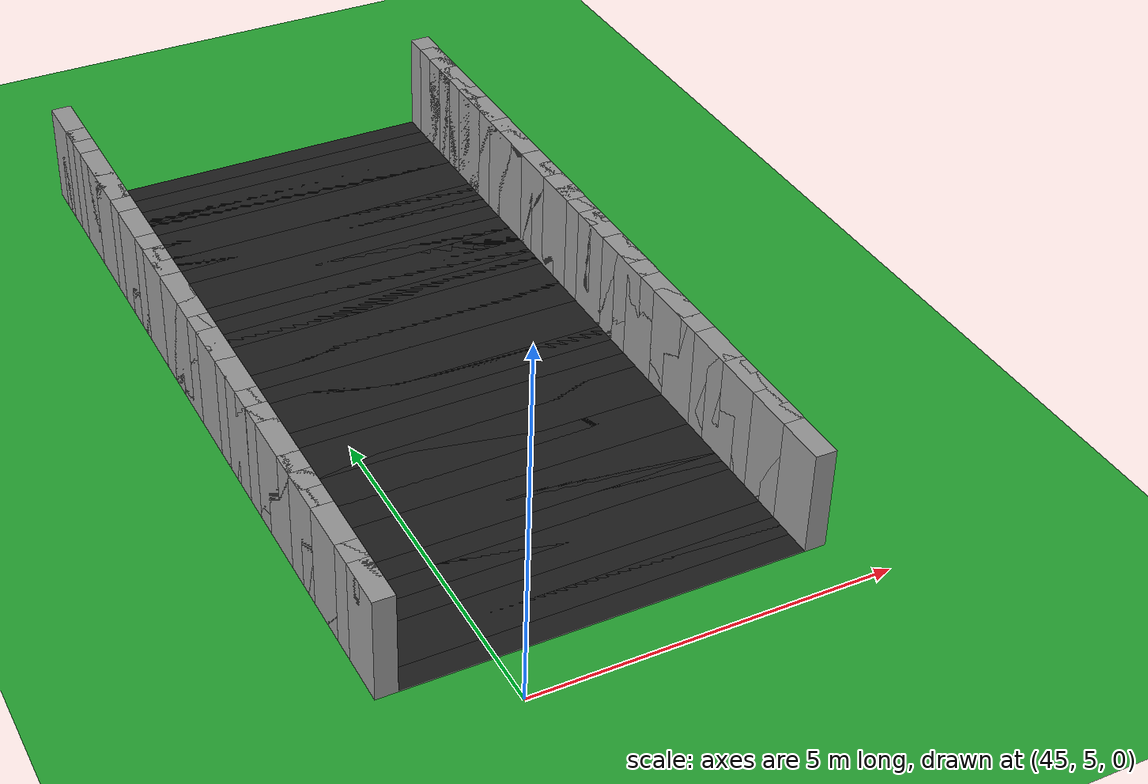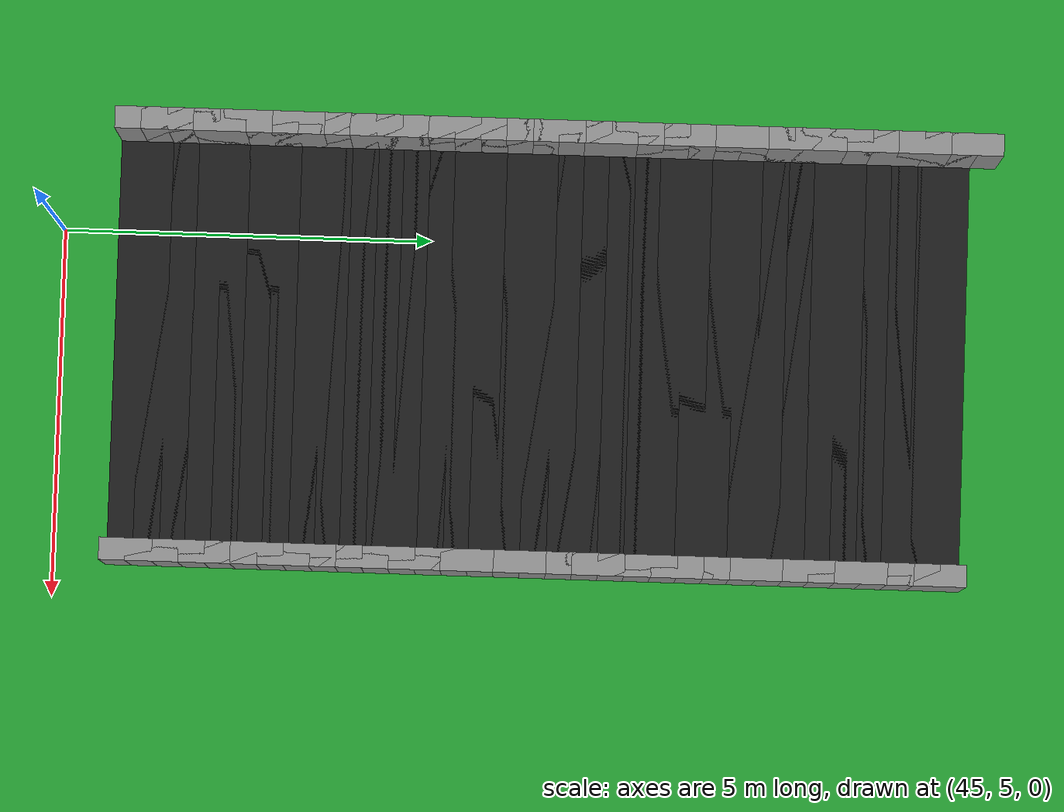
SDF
<sdf version="1.6">
 <world name="loop_speedloop">
  <include><uri>model://sun</uri></include>
  <model name="ground_plane">
   <static>true</static>
   <link name="link">
    <collision name="collision">
     <surface><friction><ode><mu>100</mu><mu2>50</mu2></ode></friction></surface>
     <geometry><plane><normal>0 0 1</normal><size>120 120</size></plane></geometry>
    </collision>
    <visual name="visual">
     <geometry><plane><normal>0 0 1</normal><size>120 120</size></plane></geometry>
     <material>
      <script><uri>file://media/materials/scripts/gazebo.material</uri><name>Gazebo/Green</name></script>
     </material>
    </visual>
   </link>
  </model>
  <model name="asphalt_144">
   <static>true</static>
   <pose>46.501 6.080 0.005 0 0 1.57080</pose>
   <link name="link">
    <visual name="visual">
     <geometry><box><size>0.711 5.500 0.010</size></box></geometry>
     <material>
      <script><uri>file://media/materials/scripts/gazebo.material</uri><name>Gazebo/Black</name></script>
     </material>
    </visual>
   </link>
  </model>
  <model name="curbL_144">
   <static>true</static>
   <pose>43.601 6.080 0.750 0 0 1.57080</pose>
   <link name="link">
    <collision name="collision"><geometry><box><size>0.711 0.300 1.500</size></box></geometry></collision>
    <visual name="visual">
     <geometry><box><size>0.711 0.300 1.500</size></box></geometry>
     <material>
      <script><uri>file://media/materials/scripts/gazebo.material</uri><name>Gazebo/Grey</name></script>
     </material>
    </visual>
   </link>
  </model>
  <model name="curbR_144">
   <static>true</static>
   <pose>49.401 6.080 0.750 0 0 1.57080</pose>
   <link name="link">
    <collision name="collision"><geometry><box><size>0.711 0.300 1.500</size></box></geometry></collision>
    <visual name="visual">
     <geometry><box><size>0.711 0.300 1.500</size></box></geometry>
     <material>
      <script><uri>file://media/materials/scripts/gazebo.material</uri><name>Gazebo/Grey</name></script>
     </material>
    </visual>
   </link>
  </model>
  <model name="asphalt_145">
   <static>true</static>
   <pose>46.501 6.431 0.005 0 0 1.57080</pose>
   <link name="link">
    <visual name="visual">
     <geometry><box><size>0.711 5.500 0.010</size></box></geometry>
     <material>
      <script><uri>file://media/materials/scripts/gazebo.material</uri><name>Gazebo/Black</name></script>
     </material>
    </visual>
   </link>
  </model>
  <model name="curbL_145">
   <static>true</static>
   <pose>43.601 6.431 0.750 0 0 1.57080</pose>
   <link name="link">
    <collision name="collision"><geometry><box><size>0.711 0.300 1.500</size></box></geometry></collision>
    <visual name="visual">
     <geometry><box><size>0.711 0.300 1.500</size></box></geometry>
     <material>
      <script><uri>file://media/materials/scripts/gazebo.material</uri><name>Gazebo/Grey</name></script>
     </material>
    </visual>
   </link>
  </model>
  <model name="curbR_145">
   <static>true</static>
   <pose>49.401 6.431 0.750 0 0 1.57080</pose>
   <link name="link">
    <collision name="collision"><geometry><box><size>0.711 0.300 1.500</size></box></geometry></collision>
    <visual name="visual">
     <geometry><box><size>0.711 0.300 1.500</size></box></geometry>
     <material>
      <script><uri>file://media/materials/scripts/gazebo.material</uri><name>Gazebo/Grey</name></script>
     </material>
    </visual>
   </link>
  </model>
  <model name="asphalt_146">
   <static>true</static>
   <pose>46.501 6.782 0.005 0 0 1.57080</pose>
   <link name="link">
    <visual name="visual">
     <geometry><box><size>0.711 5.500 0.010</size></box></geometry>
     <material>
      <script><uri>file://media/materials/scripts/gazebo.material</uri><name>Gazebo/Black</name></script>
     </material>
    </visual>
   </link>
  </model>
  <model name="curbL_146">
   <static>true</static>
   <pose>43.601 6.782 0.750 0 0 1.57080</pose>
   <link name="link">
    <collision name="collision"><geometry><box><size>0.711 0.300 1.500</size></box></geometry></collision>
    <visual name="visual">
     <geometry><box><size>0.711 0.300 1.500</size></box></geometry>
     <material>
      <script><uri>file://media/materials/scripts/gazebo.material</uri><name>Gazebo/Grey</name></script>
     </material>
    </visual>
   </link>
  </model>
  <model name="curbR_146">
   <static>true</static>
   <pose>49.401 6.782 0.750 0 0 1.57080</pose>
   <link name="link">
    <collision name="collision"><geometry><box><size>0.711 0.300 1.500</size></box></geometry></collision>
    <visual name="visual">
     <geometry><box><size>0.711 0.300 1.500</size></box></geometry>
     <material>
      <script><uri>file://media/materials/scripts/gazebo.material</uri><name>Gazebo/Grey</name></script>
     </material>
    </visual>
   </link>
  </model>
  <model name="asphalt_147">
   <static>true</static>
   <pose>46.501 7.133 0.005 0 0 1.57080</pose>
   <link name="link">
    <visual name="visual">
     <geometry><box><size>0.711 5.500 0.010</size></box></geometry>
     <material>
      <script><uri>file://media/materials/scripts/gazebo.material</uri><name>Gazebo/Black</name></script>
     </material>
    </visual>
   </link>
  </model>
  <model name="curbL_147">
   <static>true</static>
   <pose>43.601 7.133 0.750 0 0 1.57080</pose>
   <link name="link">
    <collision name="collision"><geometry><box><size>0.711 0.300 1.500</size></box></geometry></collision>
    <visual name="visual">
     <geometry><box><size>0.711 0.300 1.500</size></box></geometry>
     <material>
      <script><uri>file://media/materials/scripts/gazebo.material</uri><name>Gazebo/Grey</name></script>
     </material>
    </visual>
   </link>
  </model>
  <model name="curbR_147">
   <static>true</static>
   <pose>49.401 7.133 0.750 0 0 1.57080</pose>
   <link name="link">
    <collision name="collision"><geometry><box><size>0.711 0.300 1.500</size></box></geometry></collision>
    <visual name="visual">
     <geometry><box><size>0.711 0.300 1.500</size></box></geometry>
     <material>
      <script><uri>file://media/materials/scripts/gazebo.material</uri><name>Gazebo/Grey</name></script>
     </material>
    </visual>
   </link>
  </model>
  <model name="asphalt_148">
   <static>true</static>
   <pose>46.501 7.484 0.005 0 0 1.57080</pose>
   <link name="link">
    <visual name="visual">
     <geometry><box><size>0.711 5.500 0.010</size></box></geometry>
     <material>
      <script><uri>file://media/materials/scripts/gazebo.material</uri><name>Gazebo/Black</name></script>
     </material>
    </visual>
   </link>
  </model>
  <model name="curbL_148">
   <static>true</static>
   <pose>43.601 7.484 0.750 0 0 1.57080</pose>
   <link name="link">
    <collision name="collision"><geometry><box><size>0.711 0.300 1.500</size></box></geometry></collision>
    <visual name="visual">
     <geometry><box><size>0.711 0.300 1.500</size></box></geometry>
     <material>
      <script><uri>file://media/materials/scripts/gazebo.material</uri><name>Gazebo/Grey</name></script>
     </material>
    </visual>
   </link>
  </model>
  <model name="curbR_148">
   <static>true</static>
   <pose>49.401 7.484 0.750 0 0 1.57080</pose>
   <link name="link">
    <collision name="collision"><geometry><box><size>0.711 0.300 1.500</size></box></geometry></collision>
    <visual name="visual">
     <geometry><box><size>0.711 0.300 1.500</size></box></geometry>
     <material>
      <script><uri>file://media/materials/scripts/gazebo.material</uri><name>Gazebo/Grey</name></script>
     </material>
    </visual>
   </link>
  </model>
  <model name="asphalt_149">
   <static>true</static>
   <pose>46.501 7.834 0.005 0 0 1.57080</pose>
   <link name="link">
    <visual name="visual">
     <geometry><box><size>0.711 5.500 0.010</size></box></geometry>
     <material>
      <script><uri>file://media/materials/scripts/gazebo.material</uri><name>Gazebo/Black</name></script>
     </material>
    </visual>
   </link>
  </model>
  <model name="curbL_149">
   <static>true</static>
   <pose>43.601 7.834 0.750 0 0 1.57080</pose>
   <link name="link">
    <collision name="collision"><geometry><box><size>0.711 0.300 1.500</size></box></geometry></collision>
    <visual name="visual">
     <geometry><box><size>0.711 0.300 1.500</size></box></geometry>
     <material>
      <script><uri>file://media/materials/scripts/gazebo.material</uri><name>Gazebo/Grey</name></script>
     </material>
    </visual>
   </link>
  </model>
  <model name="curbR_149">
   <static>true</static>
   <pose>49.401 7.834 0.750 0 0 1.57080</pose>
   <link name="link">
    <collision name="collision"><geometry><box><size>0.711 0.300 1.500</size></box></geometry></collision>
    <visual name="visual">
     <geometry><box><size>0.711 0.300 1.500</size></box></geometry>
     <material>
      <script><uri>file://media/materials/scripts/gazebo.material</uri><name>Gazebo/Grey</name></script>
     </material>
    </visual>
   </link>
  </model>
  <model name="asphalt_150">
   <static>true</static>
   <pose>46.501 8.185 0.005 0 0 1.57080</pose>
   <link name="link">
    <visual name="visual">
     <geometry><box><size>0.711 5.500 0.010</size></box></geometry>
     <material>
      <script><uri>file://media/materials/scripts/gazebo.material</uri><name>Gazebo/Black</name></script>
     </material>
    </visual>
   </link>
  </model>
  <model name="curbL_150">
   <static>true</static>
   <pose>43.601 8.185 0.750 0 0 1.57080</pose>
   <link name="link">
    <collision name="collision"><geometry><box><size>0.711 0.300 1.500</size></box></geometry></collision>
    <visual name="visual">
     <geometry><box><size>0.711 0.300 1.500</size></box></geometry>
     <material>
      <script><uri>file://media/materials/scripts/gazebo.material</uri><name>Gazebo/Grey</name></script>
     </material>
    </visual>
   </link>
  </model>
  <model name="curbR_150">
   <static>true</static>
   <pose>49.401 8.185 0.750 0 0 1.57080</pose>
   <link name="link">
    <collision name="collision"><geometry><box><size>0.711 0.300 1.500</size></box></geometry></collision>
    <visual name="visual">
     <geometry><box><size>0.711 0.300 1.500</size></box></geometry>
     <material>
      <script><uri>file://media/materials/scripts/gazebo.material</uri><name>Gazebo/Grey</name></script>
     </material>
    </visual>
   </link>
  </model>
  <model name="asphalt_151">
   <static>true</static>
   <pose>46.501 8.536 0.005 0 0 1.57080</pose>
   <link name="link">
    <visual name="visual">
     <geometry><box><size>0.711 5.500 0.010</size></box></geometry>
     <material>
      <script><uri>file://media/materials/scripts/gazebo.material</uri><name>Gazebo/Black</name></script>
     </material>
    </visual>
   </link>
  </model>
  <model name="curbL_151">
   <static>true</static>
   <pose>43.601 8.536 0.750 0 0 1.57080</pose>
   <link name="link">
    <collision name="collision"><geometry><box><size>0.711 0.300 1.500</size></box></geometry></collision>
    <visual name="visual">
     <geometry><box><size>0.711 0.300 1.500</size></box></geometry>
     <material>
      <script><uri>file://media/materials/scripts/gazebo.material</uri><name>Gazebo/Grey</name></script>
     </material>
    </visual>
   </link>
  </model>
  <model name="curbR_151">
   <static>true</static>
   <pose>49.401 8.536 0.750 0 0 1.57080</pose>
   <link name="link">
    <collision name="collision"><geometry><box><size>0.711 0.300 1.500</size></box></geometry></collision>
    <visual name="visual">
     <geometry><box><size>0.711 0.300 1.500</size></box></geometry>
     <material>
      <script><uri>file://media/materials/scripts/gazebo.material</uri><name>Gazebo/Grey</name></script>
     </material>
    </visual>
   </link>
  </model>
  <model name="asphalt_152">
   <static>true</static>
   <pose>46.501 8.887 0.005 0 0 1.57080</pose>
   <link name="link">
    <visual name="visual">
     <geometry><box><size>0.711 5.500 0.010</size></box></geometry>
     <material>
      <script><uri>file://media/materials/scripts/gazebo.material</uri><name>Gazebo/Black</name></script>
     </material>
    </visual>
   </link>
  </model>
  <model name="curbL_152">
   <static>true</static>
   <pose>43.601 8.887 0.750 0 0 1.57080</pose>
   <link name="link">
    <collision name="collision"><geometry><box><size>0.711 0.300 1.500</size></box></geometry></collision>
    <visual name="visual">
     <geometry><box><size>0.711 0.300 1.500</size></box></geometry>
     <material>
      <script><uri>file://media/materials/scripts/gazebo.material</uri><name>Gazebo/Grey</name></script>
     </material>
    </visual>
   </link>
  </model>
  <model name="curbR_152">
   <static>true</static>
   <pose>49.401 8.887 0.750 0 0 1.57080</pose>
   <link name="link">
    <collision name="collision"><geometry><box><size>0.711 0.300 1.500</size></box></geometry></collision>
    <visual name="visual">
     <geometry><box><size>0.711 0.300 1.500</size></box></geometry>
     <material>
      <script><uri>file://media/materials/scripts/gazebo.material</uri><name>Gazebo/Grey</name></script>
     </material>
    </visual>
   </link>
  </model>
  <model name="asphalt_153">
   <static>true</static>
   <pose>46.501 9.238 0.005 0 0 1.57080</pose>
   <link name="link">
    <visual name="visual">
     <geometry><box><size>0.711 5.500 0.010</size></box></geometry>
     <material>
      <script><uri>file://media/materials/scripts/gazebo.material</uri><name>Gazebo/Black</name></script>
     </material>
    </visual>
   </link>
  </model>
  <model name="curbL_153">
   <static>true</static>
   <pose>43.601 9.238 0.750 0 0 1.57080</pose>
   <link name="link">
    <collision name="collision"><geometry><box><size>0.711 0.300 1.500</size></box></geometry></collision>
    <visual name="visual">
     <geometry><box><size>0.711 0.300 1.500</size></box></geometry>
     <material>
      <script><uri>file://media/materials/scripts/gazebo.material</uri><name>Gazebo/Grey</name></script>
     </material>
    </visual>
   </link>
  </model>
  <model name="curbR_153">
   <static>true</static>
   <pose>49.401 9.238 0.750 0 0 1.57080</pose>
   <link name="link">
    <collision name="collision"><geometry><box><size>0.711 0.300 1.500</size></box></geometry></collision>
    <visual name="visual">
     <geometry><box><size>0.711 0.300 1.500</size></box></geometry>
     <material>
      <script><uri>file://media/materials/scripts/gazebo.material</uri><name>Gazebo/Grey</name></script>
     </material>
    </visual>
   </link>
  </model>
  <model name="asphalt_154">
   <static>true</static>
   <pose>46.501 9.589 0.005 0 0 1.57080</pose>
   <link name="link">
    <visual name="visual">
     <geometry><box><size>0.711 5.500 0.010</size></box></geometry>
     <material>
      <script><uri>file://media/materials/scripts/gazebo.material</uri><name>Gazebo/Black</name></script>
     </material>
    </visual>
   </link>
  </model>
  <model name="curbL_154">
   <static>true</static>
   <pose>43.601 9.589 0.750 0 0 1.57080</pose>
   <link name="link">
    <collision name="collision"><geometry><box><size>0.711 0.300 1.500</size></box></geometry></collision>
    <visual name="visual">
     <geometry><box><size>0.711 0.300 1.500</size></box></geometry>
     <material>
      <script><uri>file://media/materials/scripts/gazebo.material</uri><name>Gazebo/Grey</name></script>
     </material>
    </visual>
   </link>
  </model>
  <model name="curbR_154">
   <static>true</static>
   <pose>49.401 9.589 0.750 0 0 1.57080</pose>
   <link name="link">
    <collision name="collision"><geometry><box><size>0.711 0.300 1.500</size></box></geometry></collision>
    <visual name="visual">
     <geometry><box><size>0.711 0.300 1.500</size></box></geometry>
     <material>
      <script><uri>file://media/materials/scripts/gazebo.material</uri><name>Gazebo/Grey</name></script>
     </material>
    </visual>
   </link>
  </model>
  <model name="asphalt_155">
   <static>true</static>
   <pose>46.501 9.940 0.005 0 0 1.57080</pose>
   <link name="link">
    <visual name="visual">
     <geometry><box><size>0.711 5.500 0.010</size></box></geometry>
     <material>
      <script><uri>file://media/materials/scripts/gazebo.material</uri><name>Gazebo/Black</name></script>
     </material>
    </visual>
   </link>
  </model>
  <model name="curbL_155">
   <static>true</static>
   <pose>43.601 9.940 0.750 0 0 1.57080</pose>
   <link name="link">
    <collision name="collision"><geometry><box><size>0.711 0.300 1.500</size></box></geometry></collision>
    <visual name="visual">
     <geometry><box><size>0.711 0.300 1.500</size></box></geometry>
     <material>
      <script><uri>file://media/materials/scripts/gazebo.material</uri><name>Gazebo/Grey</name></script>
     </material>
    </visual>
   </link>
  </model>
  <model name="curbR_155">
   <static>true</static>
   <pose>49.401 9.940 0.750 0 0 1.57080</pose>
   <link name="link">
    <collision name="collision"><geometry><box><size>0.711 0.300 1.500</size></box></geometry></collision>
    <visual name="visual">
     <geometry><box><size>0.711 0.300 1.500</size></box></geometry>
     <material>
      <script><uri>file://media/materials/scripts/gazebo.material</uri><name>Gazebo/Grey</name></script>
     </material>
    </visual>
   </link>
  </model>
  <model name="asphalt_156">
   <static>true</static>
   <pose>46.501 10.291 0.005 0 0 1.57080</pose>
   <link name="link">
    <visual name="visual">
     <geometry><box><size>0.711 5.500 0.010</size></box></geometry>
     <material>
      <script><uri>file://media/materials/scripts/gazebo.material</uri><name>Gazebo/Black</name></script>
     </material>
    </visual>
   </link>
  </model>
  <model name="curbL_156">
   <static>true</static>
   <pose>43.601 10.291 0.750 0 0 1.57080</pose>
   <link name="link">
    <collision name="collision"><geometry><box><size>0.711 0.300 1.500</size></box></geometry></collision>
    <visual name="visual">
     <geometry><box><size>0.711 0.300 1.500</size></box></geometry>
     <material>
      <script><uri>file://media/materials/scripts/gazebo.material</uri><name>Gazebo/Grey</name></script>
     </material>
    </visual>
   </link>
  </model>
  <model name="curbR_156">
   <static>true</static>
   <pose>49.401 10.291 0.750 0 0 1.57080</pose>
   <link name="link">
    <collision name="collision"><geometry><box><size>0.711 0.300 1.500</size></box></geometry></collision>
    <visual name="visual">
     <geometry><box><size>0.711 0.300 1.500</size></box></geometry>
     <material>
      <script><uri>file://media/materials/scripts/gazebo.material</uri><name>Gazebo/Grey</name></script>
     </material>
    </visual>
   </link>
  </model>
  <model name="asphalt_157">
   <static>true</static>
   <pose>46.501 10.642 0.005 0 0 1.57080</pose>
   <link name="link">
    <visual name="visual">
     <geometry><box><size>0.711 5.500 0.010</size></box></geometry>
     <material>
      <script><uri>file://media/materials/scripts/gazebo.material</uri><name>Gazebo/Black</name></script>
     </material>
    </visual>
   </link>
  </model>
  <model name="curbL_157">
   <static>true</static>
   <pose>43.601 10.642 0.750 0 0 1.57080</pose>
   <link name="link">
    <collision name="collision"><geometry><box><size>0.711 0.300 1.500</size></box></geometry></collision>
    <visual name="visual">
     <geometry><box><size>0.711 0.300 1.500</size></box></geometry>
     <material>
      <script><uri>file://media/materials/scripts/gazebo.material</uri><name>Gazebo/Grey</name></script>
     </material>
    </visual>
   </link>
  </model>
  <model name="curbR_157">
   <static>true</static>
   <pose>49.401 10.642 0.750 0 0 1.57080</pose>
   <link name="link">
    <collision name="collision"><geometry><box><size>0.711 0.300 1.500</size></box></geometry></collision>
    <visual name="visual">
     <geometry><box><size>0.711 0.300 1.500</size></box></geometry>
     <material>
      <script><uri>file://media/materials/scripts/gazebo.material</uri><name>Gazebo/Grey</name></script>
     </material>
    </visual>
   </link>
  </model>
  <model name="asphalt_158">
   <static>true</static>
   <pose>46.501 10.992 0.005 0 0 1.57080</pose>
   <link name="link">
    <visual name="visual">
     <geometry><box><size>0.711 5.500 0.010</size></box></geometry>
     <material>
      <script><uri>file://media/materials/scripts/gazebo.material</uri><name>Gazebo/Black</name></script>
     </material>
    </visual>
   </link>
  </model>
  <model name="curbL_158">
   <static>true</static>
   <pose>43.601 10.992 0.750 0 0 1.57080</pose>
   <link name="link">
    <collision name="collision"><geometry><box><size>0.711 0.300 1.500</size></box></geometry></collision>
    <visual name="visual">
     <geometry><box><size>0.711 0.300 1.500</size></box></geometry>
     <material>
      <script><uri>file://media/materials/scripts/gazebo.material</uri><name>Gazebo/Grey</name></script>
     </material>
    </visual>
   </link>
  </model>
  <model name="curbR_158">
   <static>true</static>
   <pose>49.401 10.992 0.750 0 0 1.57080</pose>
   <link name="link">
    <collision name="collision"><geometry><box><size>0.711 0.300 1.500</size></box></geometry></collision>
    <visual name="visual">
     <geometry><box><size>0.711 0.300 1.500</size></box></geometry>
     <material>
      <script><uri>file://media/materials/scripts/gazebo.material</uri><name>Gazebo/Grey</name></script>
     </material>
    </visual>
   </link>
  </model>
  <model name="asphalt_159">
   <static>true</static>
   <pose>46.501 11.343 0.005 0 0 1.57080</pose>
   <link name="link">
    <visual name="visual">
     <geometry><box><size>0.711 5.500 0.010</size></box></geometry>
     <material>
      <script><uri>file://media/materials/scripts/gazebo.material</uri><name>Gazebo/Black</name></script>
     </material>
    </visual>
   </link>
  </model>
  <model name="curbL_159">
   <static>true</static>
   <pose>43.601 11.343 0.750 0 0 1.57080</pose>
   <link name="link">
    <collision name="collision"><geometry><box><size>0.711 0.300 1.500</size></box></geometry></collision>
    <visual name="visual">
     <geometry><box><size>0.711 0.300 1.500</size></box></geometry>
     <material>
      <script><uri>file://media/materials/scripts/gazebo.material</uri><name>Gazebo/Grey</name></script>
     </material>
    </visual>
   </link>
  </model>
  <model name="curbR_159">
   <static>true</static>
   <pose>49.401 11.343 0.750 0 0 1.57080</pose>
   <link name="link">
    <collision name="collision"><geometry><box><size>0.711 0.300 1.500</size></box></geometry></collision>
    <visual name="visual">
     <geometry><box><size>0.711 0.300 1.500</size></box></geometry>
     <material>
      <script><uri>file://media/materials/scripts/gazebo.material</uri><name>Gazebo/Grey</name></script>
     </material>
    </visual>
   </link>
  </model>
  <model name="asphalt_160">
   <static>true</static>
   <pose>46.501 11.694 0.005 0 0 1.57080</pose>
   <link name="link">
    <visual name="visual">
     <geometry><box><size>0.711 5.500 0.010</size></box></geometry>
     <material>
      <script><uri>file://media/materials/scripts/gazebo.material</uri><name>Gazebo/Black</name></script>
     </material>
    </visual>
   </link>
  </model>
  <model name="curbL_160">
   <static>true</static>
   <pose>43.601 11.694 0.750 0 0 1.57080</pose>
   <link name="link">
    <collision name="collision"><geometry><box><size>0.711 0.300 1.500</size></box></geometry></collision>
    <visual name="visual">
     <geometry><box><size>0.711 0.300 1.500</size></box></geometry>
     <material>
      <script><uri>file://media/materials/scripts/gazebo.material</uri><name>Gazebo/Grey</name></script>
     </material>
    </visual>
   </link>
  </model>
  <model name="curbR_160">
   <static>true</static>
   <pose>49.401 11.694 0.750 0 0 1.57080</pose>
   <link name="link">
    <collision name="collision"><geometry><box><size>0.711 0.300 1.500</size></box></geometry></collision>
    <visual name="visual">
     <geometry><box><size>0.711 0.300 1.500</size></box></geometry>
     <material>
      <script><uri>file://media/materials/scripts/gazebo.material</uri><name>Gazebo/Grey</name></script>
     </material>
    </visual>
   </link>
  </model>
  <model name="asphalt_161">
   <static>true</static>
   <pose>46.501 12.045 0.005 0 0 1.57080</pose>
   <link name="link">
    <visual name="visual">
     <geometry><box><size>0.711 5.500 0.010</size></box></geometry>
     <material>
      <script><uri>file://media/materials/scripts/gazebo.material</uri><name>Gazebo/Black</name></script>
     </material>
    </visual>
   </link>
  </model>
  <model name="curbL_161">
   <static>true</static>
   <pose>43.601 12.045 0.750 0 0 1.57080</pose>
   <link name="link">
    <collision name="collision"><geometry><box><size>0.711 0.300 1.500</size></box></geometry></collision>
    <visual name="visual">
     <geometry><box><size>0.711 0.300 1.500</size></box></geometry>
     <material>
      <script><uri>file://media/materials/scripts/gazebo.material</uri><name>Gazebo/Grey</name></script>
     </material>
    </visual>
   </link>
  </model>
  <model name="curbR_161">
   <static>true</static>
   <pose>49.401 12.045 0.750 0 0 1.57080</pose>
   <link name="link">
    <collision name="collision"><geometry><box><size>0.711 0.300 1.500</size></box></geometry></collision>
    <visual name="visual">
     <geometry><box><size>0.711 0.300 1.500</size></box></geometry>
     <material>
      <script><uri>file://media/materials/scripts/gazebo.material</uri><name>Gazebo/Grey</name></script>
     </material>
    </visual>
   </link>
  </model>
  <model name="asphalt_162">
   <static>true</static>
   <pose>46.501 12.396 0.005 0 0 1.57080</pose>
   <link name="link">
    <visual name="visual">
     <geometry><box><size>0.711 5.500 0.010</size></box></geometry>
     <material>
      <script><uri>file://media/materials/scripts/gazebo.material</uri><name>Gazebo/Black</name></script>
     </material>
    </visual>
   </link>
  </model>
  <model name="curbL_162">
   <static>true</static>
   <pose>43.601 12.396 0.750 0 0 1.57080</pose>
   <link name="link">
    <collision name="collision"><geometry><box><size>0.711 0.300 1.500</size></box></geometry></collision>
    <visual name="visual">
     <geometry><box><size>0.711 0.300 1.500</size></box></geometry>
     <material>
      <script><uri>file://media/materials/scripts/gazebo.material</uri><name>Gazebo/Grey</name></script>
     </material>
    </visual>
   </link>
  </model>
  <model name="curbR_162">
   <static>true</static>
   <pose>49.401 12.396 0.750 0 0 1.57080</pose>
   <link name="link">
    <collision name="collision"><geometry><box><size>0.711 0.300 1.500</size></box></geometry></collision>
    <visual name="visual">
     <geometry><box><size>0.711 0.300 1.500</size></box></geometry>
     <material>
      <script><uri>file://media/materials/scripts/gazebo.material</uri><name>Gazebo/Grey</name></script>
     </material>
    </visual>
   </link>
  </model>
  <model name="asphalt_163">
   <static>true</static>
   <pose>46.501 12.747 0.005 0 0 1.57080</pose>
   <link name="link">
    <visual name="visual">
     <geometry><box><size>0.711 5.500 0.010</size></box></geometry>
     <material>
      <script><uri>file://media/materials/scripts/gazebo.material</uri><name>Gazebo/Black</name></script>
     </material>
    </visual>
   </link>
  </model>
  <model name="curbL_163">
   <static>true</static>
   <pose>43.601 12.747 0.750 0 0 1.57080</pose>
   <link name="link">
    <collision name="collision"><geometry><box><size>0.711 0.300 1.500</size></box></geometry></collision>
    <visual name="visual">
     <geometry><box><size>0.711 0.300 1.500</size></box></geometry>
     <material>
      <script><uri>file://media/materials/scripts/gazebo.material</uri><name>Gazebo/Grey</name></script>
     </material>
    </visual>
   </link>
  </model>
  <model name="curbR_163">
   <static>true</static>
   <pose>49.401 12.747 0.750 0 0 1.57080</pose>
   <link name="link">
    <collision name="collision"><geometry><box><size>0.711 0.300 1.500</size></box></geometry></collision>
    <visual name="visual">
     <geometry><box><size>0.711 0.300 1.500</size></box></geometry>
     <material>
      <script><uri>file://media/materials/scripts/gazebo.material</uri><name>Gazebo/Grey</name></script>
     </material>
    </visual>
   </link>
  </model>
  <model name="asphalt_164">
   <static>true</static>
   <pose>46.501 13.098 0.005 0 0 1.57080</pose>
   <link name="link">
    <visual name="visual">
     <geometry><box><size>0.711 5.500 0.010</size></box></geometry>
     <material>
      <script><uri>file://media/materials/scripts/gazebo.material</uri><name>Gazebo/Black</name></script>
     </material>
    </visual>
   </link>
  </model>
  <model name="curbL_164">
   <static>true</static>
   <pose>43.601 13.098 0.750 0 0 1.57080</pose>
   <link name="link">
    <collision name="collision"><geometry><box><size>0.711 0.300 1.500</size></box></geometry></collision>
    <visual name="visual">
     <geometry><box><size>0.711 0.300 1.500</size></box></geometry>
     <material>
      <script><uri>file://media/materials/scripts/gazebo.material</uri><name>Gazebo/Grey</name></script>
     </material>
    </visual>
   </link>
  </model>
  <model name="curbR_164">
   <static>true</static>
   <pose>49.401 13.098 0.750 0 0 1.57080</pose>
   <link name="link">
    <collision name="collision"><geometry><box><size>0.711 0.300 1.500</size></box></geometry></collision>
    <visual name="visual">
     <geometry><box><size>0.711 0.300 1.500</size></box></geometry>
     <material>
      <script><uri>file://media/materials/scripts/gazebo.material</uri><name>Gazebo/Grey</name></script>
     </material>
    </visual>
   </link>
  </model>
  <model name="asphalt_165">
   <static>true</static>
   <pose>46.501 13.449 0.005 0 0 1.57080</pose>
   <link name="link">
    <visual name="visual">
     <geometry><box><size>0.711 5.500 0.010</size></box></geometry>
     <material>
      <script><uri>file://media/materials/scripts/gazebo.material</uri><name>Gazebo/Black</name></script>
     </material>
    </visual>
   </link>
  </model>
  <model name="curbL_165">
   <static>true</static>
   <pose>43.601 13.449 0.750 0 0 1.57080</pose>
   <link name="link">
    <collision name="collision"><geometry><box><size>0.711 0.300 1.500</size></box></geometry></collision>
    <visual name="visual">
     <geometry><box><size>0.711 0.300 1.500</size></box></geometry>
     <material>
      <script><uri>file://media/materials/scripts/gazebo.material</uri><name>Gazebo/Grey</name></script>
     </material>
    </visual>
   </link>
  </model>
  <model name="curbR_165">
   <static>true</static>
   <pose>49.401 13.449 0.750 0 0 1.57080</pose>
   <link name="link">
    <collision name="collision"><geometry><box><size>0.711 0.300 1.500</size></box></geometry></collision>
    <visual name="visual">
     <geometry><box><size>0.711 0.300 1.500</size></box></geometry>
     <material>
      <script><uri>file://media/materials/scripts/gazebo.material</uri><name>Gazebo/Grey</name></script>
     </material>
    </visual>
   </link>
  </model>
  <model name="asphalt_166">
   <static>true</static>
   <pose>46.501 13.799 0.005 0 0 1.57080</pose>
   <link name="link">
    <visual name="visual">
     <geometry><box><size>0.711 5.500 0.010</size></box></geometry>
     <material>
      <script><uri>file://media/materials/scripts/gazebo.material</uri><name>Gazebo/Black</name></script>
     </material>
    </visual>
   </link>
  </model>
  <model name="curbL_166">
   <static>true</static>
   <pose>43.601 13.799 0.750 0 0 1.57080</pose>
   <link name="link">
    <collision name="collision"><geometry><box><size>0.711 0.300 1.500</size></box></geometry></collision>
    <visual name="visual">
     <geometry><box><size>0.711 0.300 1.500</size></box></geometry>
     <material>
      <script><uri>file://media/materials/scripts/gazebo.material</uri><name>Gazebo/Grey</name></script>
     </material>
    </visual>
   </link>
  </model>
  <model name="curbR_166">
   <static>true</static>
   <pose>49.401 13.799 0.750 0 0 1.57080</pose>
   <link name="link">
    <collision name="collision"><geometry><box><size>0.711 0.300 1.500</size></box></geometry></collision>
    <visual name="visual">
     <geometry><box><size>0.711 0.300 1.500</size></box></geometry>
     <material>
      <script><uri>file://media/materials/scripts/gazebo.material</uri><name>Gazebo/Grey</name></script>
     </material>
    </visual>
   </link>
  </model>
  <model name="asphalt_167">
   <static>true</static>
   <pose>46.501 14.150 0.005 0 0 1.57080</pose>
   <link name="link">
    <visual name="visual">
     <geometry><box><size>0.711 5.500 0.010</size></box></geometry>
     <material>
      <script><uri>file://media/materials/scripts/gazebo.material</uri><name>Gazebo/Black</name></script>
     </material>
    </visual>
   </link>
  </model>
  <model name="curbL_167">
   <static>true</static>
   <pose>43.601 14.150 0.750 0 0 1.57080</pose>
   <link name="link">
    <collision name="collision"><geometry><box><size>0.711 0.300 1.500</size></box></geometry></collision>
    <visual name="visual">
     <geometry><box><size>0.711 0.300 1.500</size></box></geometry>
     <material>
      <script><uri>file://media/materials/scripts/gazebo.material</uri><name>Gazebo/Grey</name></script>
     </material>
    </visual>
   </link>
  </model>
  <model name="curbR_167">
   <static>true</static>
   <pose>49.401 14.150 0.750 0 0 1.57080</pose>
   <link name="link">
    <collision name="collision"><geometry><box><size>0.711 0.300 1.500</size></box></geometry></collision>
    <visual name="visual">
     <geometry><box><size>0.711 0.300 1.500</size></box></geometry>
     <material>
      <script><uri>file://media/materials/scripts/gazebo.material</uri><name>Gazebo/Grey</name></script>
     </material>
    </visual>
   </link>
  </model>
  <model name="asphalt_168">
   <static>true</static>
   <pose>46.501 14.501 0.005 0 0 1.57080</pose>
   <link name="link">
    <visual name="visual">
     <geometry><box><size>0.711 5.500 0.010</size></box></geometry>
     <material>
      <script><uri>file://media/materials/scripts/gazebo.material</uri><name>Gazebo/Black</name></script>
     </material>
    </visual>
   </link>
  </model>
  <model name="curbL_168">
   <static>true</static>
   <pose>43.601 14.501 0.750 0 0 1.57080</pose>
   <link name="link">
    <collision name="collision"><geometry><box><size>0.711 0.300 1.500</size></box></geometry></collision>
    <visual name="visual">
     <geometry><box><size>0.711 0.300 1.500</size></box></geometry>
     <material>
      <script><uri>file://media/materials/scripts/gazebo.material</uri><name>Gazebo/Grey</name></script>
     </material>
    </visual>
   </link>
  </model>
  <model name="curbR_168">
   <static>true</static>
   <pose>49.401 14.501 0.750 0 0 1.57080</pose>
   <link name="link">
    <collision name="collision"><geometry><box><size>0.711 0.300 1.500</size></box></geometry></collision>
    <visual name="visual">
     <geometry><box><size>0.711 0.300 1.500</size></box></geometry>
     <material>
      <script><uri>file://media/materials/scripts/gazebo.material</uri><name>Gazebo/Grey</name></script>
     </material>
    </visual>
   </link>
  </model>
  <model name="asphalt_169">
   <static>true</static>
   <pose>46.501 14.852 0.005 0 0 1.57080</pose>
   <link name="link">
    <visual name="visual">
     <geometry><box><size>0.711 5.500 0.010</size></box></geometry>
     <material>
      <script><uri>file://media/materials/scripts/gazebo.material</uri><name>Gazebo/Black</name></script>
     </material>
    </visual>
   </link>
  </model>
  <model name="curbL_169">
   <static>true</static>
   <pose>43.601 14.852 0.750 0 0 1.57080</pose>
   <link name="link">
    <collision name="collision"><geometry><box><size>0.711 0.300 1.500</size></box></geometry></collision>
    <visual name="visual">
     <geometry><box><size>0.711 0.300 1.500</size></box></geometry>
     <material>
      <script><uri>file://media/materials/scripts/gazebo.material</uri><name>Gazebo/Grey</name></script>
     </material>
    </visual>
   </link>
  </model>
  <model name="curbR_169">
   <static>true</static>
   <pose>49.401 14.852 0.750 0 0 1.57080</pose>
   <link name="link">
    <collision name="collision"><geometry><box><size>0.711 0.300 1.500</size></box></geometry></collision>
    <visual name="visual">
     <geometry><box><size>0.711 0.300 1.500</size></box></geometry>
     <material>
      <script><uri>file://media/materials/scripts/gazebo.material</uri><name>Gazebo/Grey</name></script>
     </material>
    </visual>
   </link>
  </model>
  <model name="asphalt_170">
   <static>true</static>
   <pose>46.501 15.203 0.005 0 0 1.57080</pose>
   <link name="link">
    <visual name="visual">
     <geometry><box><size>0.711 5.500 0.010</size></box></geometry>
     <material>
      <script><uri>file://media/materials/scripts/gazebo.material</uri><name>Gazebo/Black</name></script>
     </material>
    </visual>
   </link>
  </model>
  <model name="curbL_170">
   <static>true</static>
   <pose>43.601 15.203 0.750 0 0 1.57080</pose>
   <link name="link">
    <collision name="collision"><geometry><box><size>0.711 0.300 1.500</size></box></geometry></collision>
    <visual name="visual">
     <geometry><box><size>0.711 0.300 1.500</size></box></geometry>
     <material>
      <script><uri>file://media/materials/scripts/gazebo.material</uri><name>Gazebo/Grey</name></script>
     </material>
    </visual>
   </link>
  </model>
  <model name="curbR_170">
   <static>true</static>
   <pose>49.401 15.203 0.750 0 0 1.57080</pose>
   <link name="link">
    <collision name="collision"><geometry><box><size>0.711 0.300 1.500</size></box></geometry></collision>
    <visual name="visual">
     <geometry><box><size>0.711 0.300 1.500</size></box></geometry>
     <material>
      <script><uri>file://media/materials/scripts/gazebo.material</uri><name>Gazebo/Grey</name></script>
     </material>
    </visual>
   </link>
  </model>
  <model name="asphalt_171">
   <static>true</static>
   <pose>46.501 15.554 0.005 0 0 1.57080</pose>
   <link name="link">
    <visual name="visual">
     <geometry><box><size>0.711 5.500 0.010</size></box></geometry>
     <material>
      <script><uri>file://media/materials/scripts/gazebo.material</uri><name>Gazebo/Black</name></script>
     </material>
    </visual>
   </link>
  </model>
  <model name="curbL_171">
   <static>true</static>
   <pose>43.601 15.554 0.750 0 0 1.57080</pose>
   <link name="link">
    <collision name="collision"><geometry><box><size>0.711 0.300 1.500</size></box></geometry></collision>
    <visual name="visual">
     <geometry><box><size>0.711 0.300 1.500</size></box></geometry>
     <material>
      <script><uri>file://media/materials/scripts/gazebo.material</uri><name>Gazebo/Grey</name></script>
     </material>
    </visual>
   </link>
  </model>
  <model name="curbR_171">
   <static>true</static>
   <pose>49.401 15.554 0.750 0 0 1.57080</pose>
   <link name="link">
    <collision name="collision"><geometry><box><size>0.711 0.300 1.500</size></box></geometry></collision>
    <visual name="visual">
     <geometry><box><size>0.711 0.300 1.500</size></box></geometry>
     <material>
      <script><uri>file://media/materials/scripts/gazebo.material</uri><name>Gazebo/Grey</name></script>
     </material>
    </visual>
   </link>
  </model>
  <model name="asphalt_172">
   <static>true</static>
   <pose>46.501 15.905 0.005 0 0 1.57080</pose>
   <link name="link">
    <visual name="visual">
     <geometry><box><size>0.711 5.500 0.010</size></box></geometry>
     <material>
      <script><uri>file://media/materials/scripts/gazebo.material</uri><name>Gazebo/Black</name></script>
     </material>
    </visual>
   </link>
  </model>
  <model name="curbL_172">
   <static>true</static>
   <pose>43.601 15.905 0.750 0 0 1.57080</pose>
   <link name="link">
    <collision name="collision"><geometry><box><size>0.711 0.300 1.500</size></box></geometry></collision>
    <visual name="visual">
     <geometry><box><size>0.711 0.300 1.500</size></box></geometry>
     <material>
      <script><uri>file://media/materials/scripts/gazebo.material</uri><name>Gazebo/Grey</name></script>
     </material>
    </visual>
   </link>
  </model>
  <model name="curbR_172">
   <static>true</static>
   <pose>49.401 15.905 0.750 0 0 1.57080</pose>
   <link name="link">
    <collision name="collision"><geometry><box><size>0.711 0.300 1.500</size></box></geometry></collision>
    <visual name="visual">
     <geometry><box><size>0.711 0.300 1.500</size></box></geometry>
     <material>
      <script><uri>file://media/materials/scripts/gazebo.material</uri><name>Gazebo/Grey</name></script>
     </material>
    </visual>
   </link>
  </model>
  <model name="asphalt_173">
   <static>true</static>
   <pose>46.501 16.256 0.005 0 0 1.57080</pose>
   <link name="link">
    <visual name="visual">
     <geometry><box><size>0.711 5.500 0.010</size></box></geometry>
     <material>
      <script><uri>file://media/materials/scripts/gazebo.material</uri><name>Gazebo/Black</name></script>
     </material>
    </visual>
   </link>
  </model>
  <model name="curbL_173">
   <static>true</static>
   <pose>43.601 16.256 0.750 0 0 1.57080</pose>
   <link name="link">
    <collision name="collision"><geometry><box><size>0.711 0.300 1.500</size></box></geometry></collision>
    <visual name="visual">
     <geometry><box><size>0.711 0.300 1.500</size></box></geometry>
     <material>
      <script><uri>file://media/materials/scripts/gazebo.material</uri><name>Gazebo/Grey</name></script>
     </material>
    </visual>
   </link>
  </model>
  <model name="curbR_173">
   <static>true</static>
   <pose>49.401 16.256 0.750 0 0 1.57080</pose>
   <link name="link">
    <collision name="collision"><geometry><box><size>0.711 0.300 1.500</size></box></geometry></collision>
    <visual name="visual">
     <geometry><box><size>0.711 0.300 1.500</size></box></geometry>
     <material>
      <script><uri>file://media/materials/scripts/gazebo.material</uri><name>Gazebo/Grey</name></script>
     </material>
    </visual>
   </link>
  </model>
  <model name="asphalt_174">
   <static>true</static>
   <pose>46.501 16.606 0.005 0 0 1.57080</pose>
   <link name="link">
    <visual name="visual">
     <geometry><box><size>0.711 5.500 0.010</size></box></geometry>
     <material>
      <script><uri>file://media/materials/scripts/gazebo.material</uri><name>Gazebo/Black</name></script>
     </material>
    </visual>
   </link>
  </model>
  <model name="curbL_174">
   <static>true</static>
   <pose>43.601 16.606 0.750 0 0 1.57080</pose>
   <link name="link">
    <collision name="collision"><geometry><box><size>0.711 0.300 1.500</size></box></geometry></collision>
    <visual name="visual">
     <geometry><box><size>0.711 0.300 1.500</size></box></geometry>
     <material>
      <script><uri>file://media/materials/scripts/gazebo.material</uri><name>Gazebo/Grey</name></script>
     </material>
    </visual>
   </link>
  </model>
  <model name="curbR_174">
   <static>true</static>
   <pose>49.401 16.606 0.750 0 0 1.57080</pose>
   <link name="link">
    <collision name="collision"><geometry><box><size>0.711 0.300 1.500</size></box></geometry></collision>
    <visual name="visual">
     <geometry><box><size>0.711 0.300 1.500</size></box></geometry>
     <material>
      <script><uri>file://media/materials/scripts/gazebo.material</uri><name>Gazebo/Grey</name></script>
     </material>
    </visual>
   </link>
  </model>
  <model name="asphalt_175">
   <static>true</static>
   <pose>46.501 16.957 0.005 0 0 1.57080</pose>
   <link name="link">
    <visual name="visual">
     <geometry><box><size>0.711 5.500 0.010</size></box></geometry>
     <material>
      <script><uri>file://media/materials/scripts/gazebo.material</uri><name>Gazebo/Black</name></script>
     </material>
    </visual>
   </link>
  </model>
  <model name="curbL_175">
   <static>true</static>
   <pose>43.601 16.957 0.750 0 0 1.57080</pose>
   <link name="link">
    <collision name="collision"><geometry><box><size>0.711 0.300 1.500</size></box></geometry></collision>
    <visual name="visual">
     <geometry><box><size>0.711 0.300 1.500</size></box></geometry>
     <material>
      <script><uri>file://media/materials/scripts/gazebo.material</uri><name>Gazebo/Grey</name></script>
     </material>
    </visual>
   </link>
  </model>
  <model name="curbR_175">
   <static>true</static>
   <pose>49.401 16.957 0.750 0 0 1.57080</pose>
   <link name="link">
    <collision name="collision"><geometry><box><size>0.711 0.300 1.500</size></box></geometry></collision>
    <visual name="visual">
     <geometry><box><size>0.711 0.300 1.500</size></box></geometry>
     <material>
      <script><uri>file://media/materials/scripts/gazebo.material</uri><name>Gazebo/Grey</name></script>
     </material>
    </visual>
   </link>
  </model>
  <model name="curbL_176">
   <static>true</static>
   <pose>43.601 17.308 0.750 0 0 1.57080</pose>
   <link name="link">
    <collision name="collision"><geometry><box><size>0.711 0.300 1.500</size></box></geometry></collision>
    <visual name="visual">
     <geometry><box><size>0.711 0.300 1.500</size></box></geometry>
     <material>
      <script><uri>file://media/materials/scripts/gazebo.material</uri><name>Gazebo/Grey</name></script>
     </material>
    </visual>
   </link>
  </model>
 </world>
</sdf>
